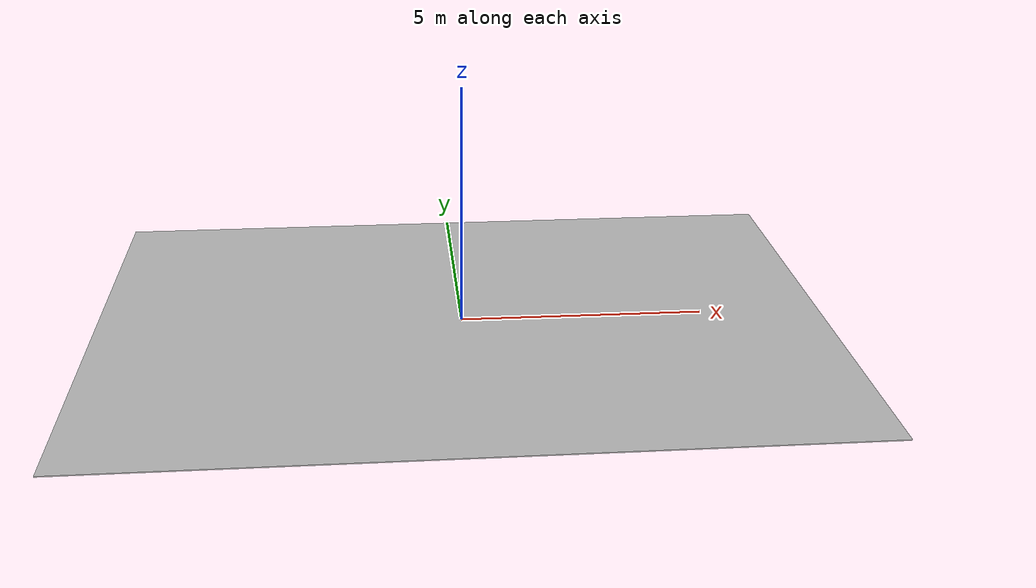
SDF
<?xml version="1.0" ?>
<sdf version="1.6">
  <model name="textured_roof">
    <static>true</static>
    <link name="link">
      <pose>0 0 0 0 0 0</pose>
      <visual name="visual">
        <geometry>
          <box>
            <size>15 10 0.02</size>
          </box>
        </geometry>
        <material>
          <script>
            <uri>model://textured_roof/materials/scripts</uri>
            <uri>model://textured_roof/materials/textures</uri>
            <name>TexturedRoof/HighRes</name>
          </script>
        </material>
      </visual>
    </link>
  </model>
</sdf>
